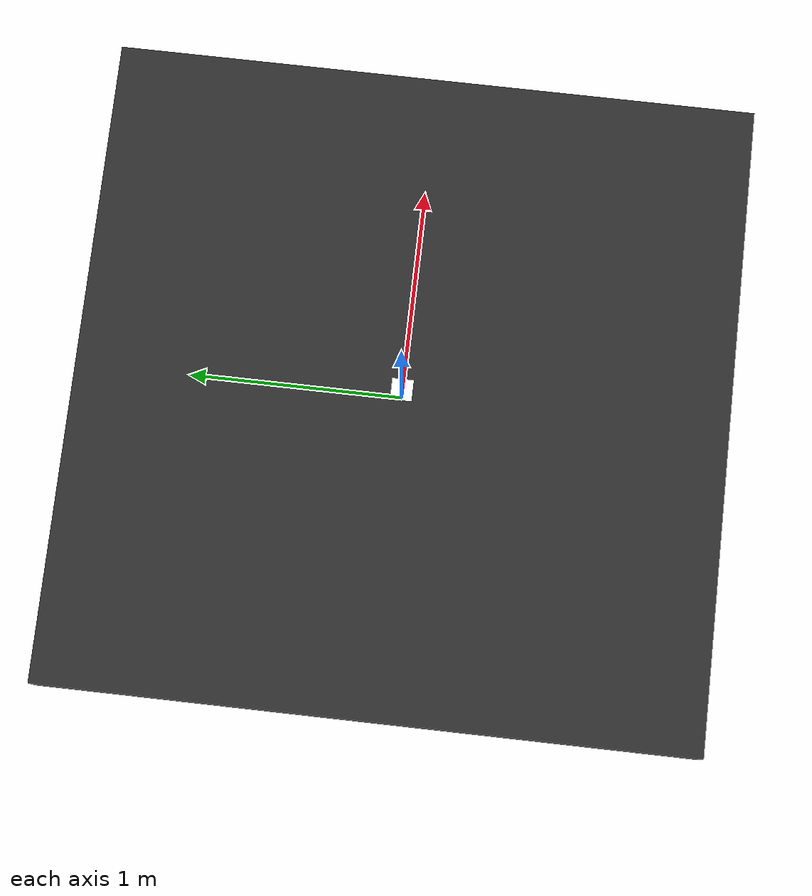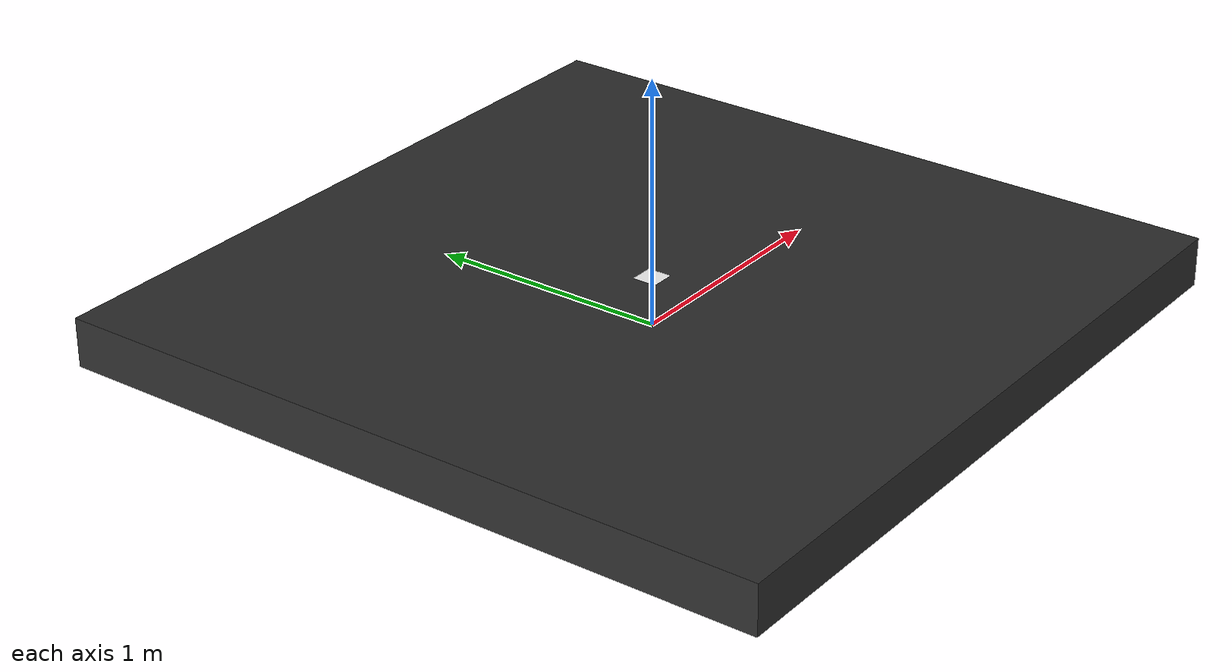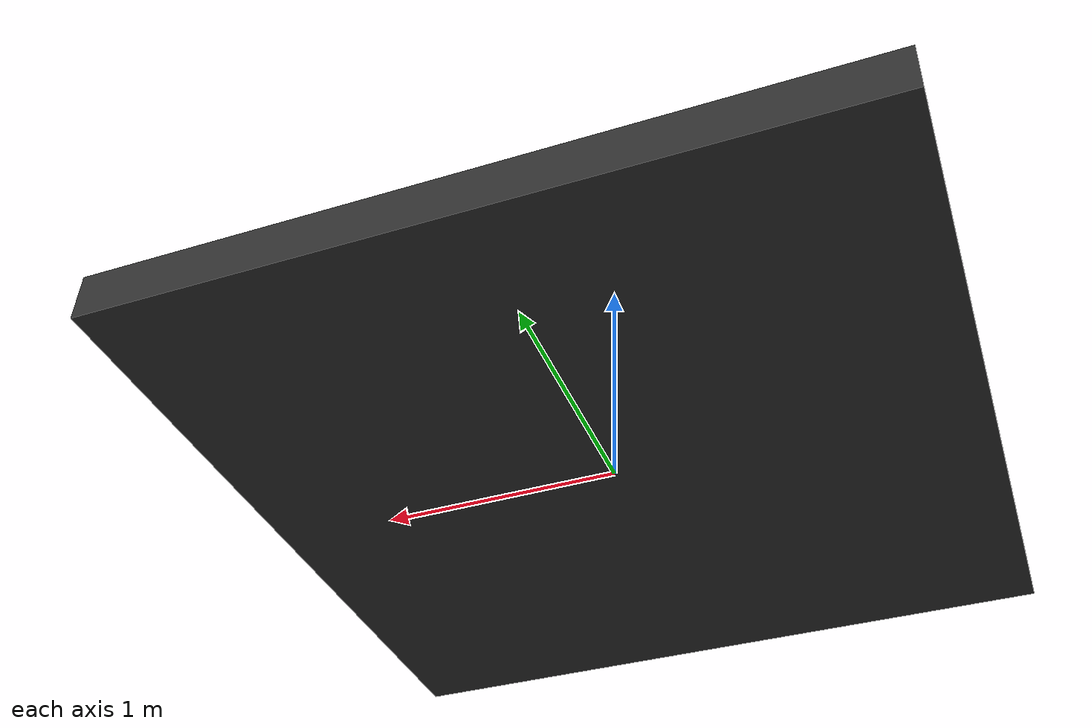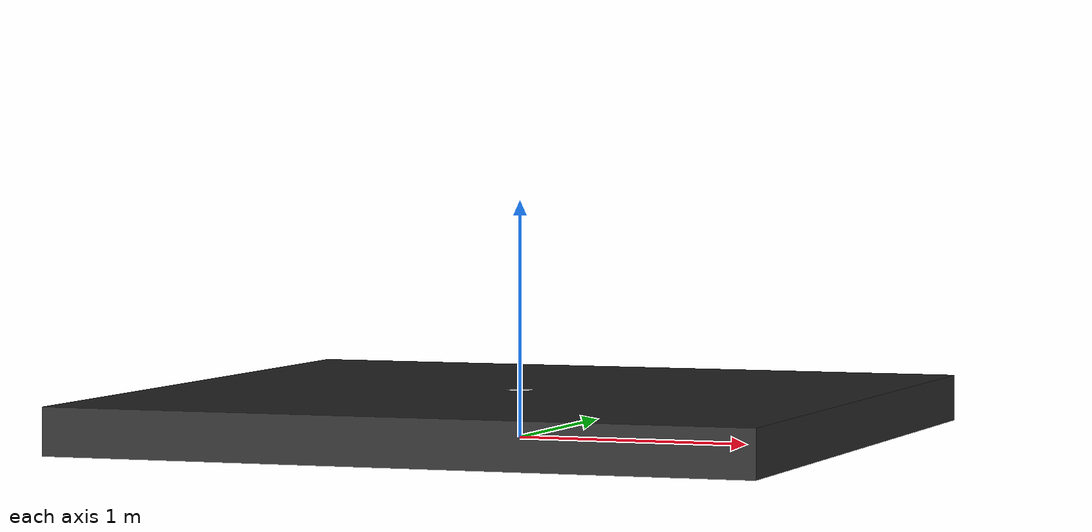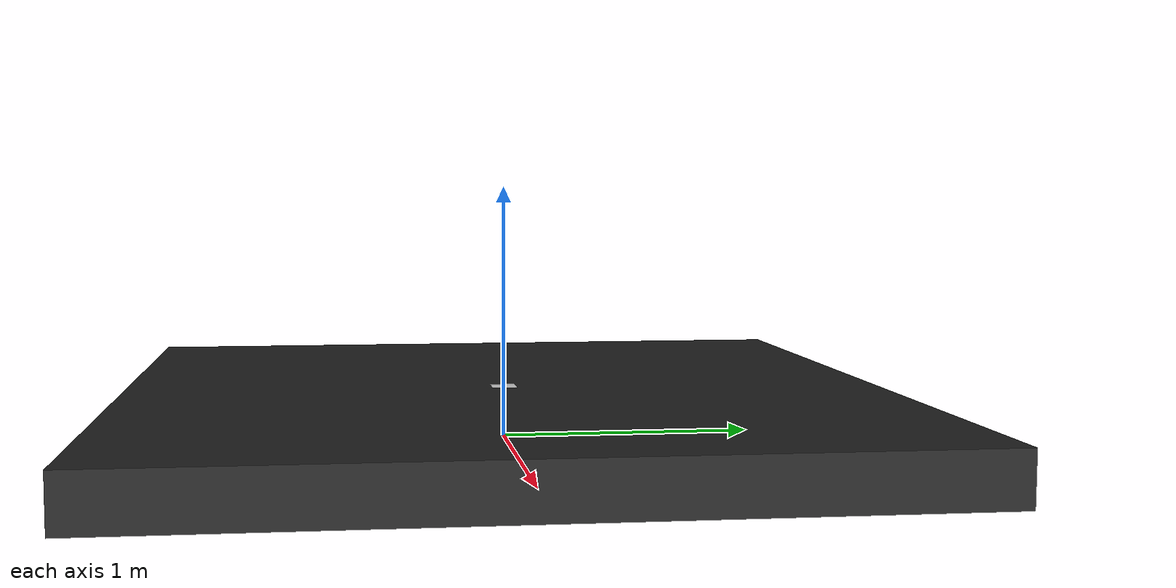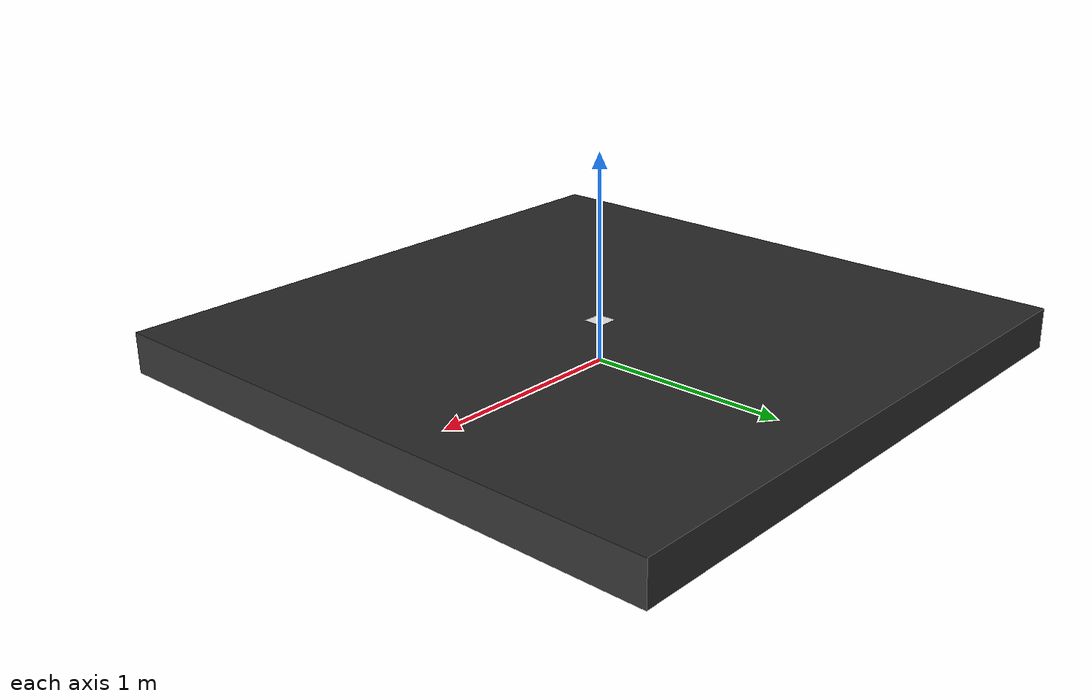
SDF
<?xml version="1.0"?>
<sdf version="1.9">
  <model name="moving_pad">
    <static>false</static>
    <link name="deck">
      <inertial>
        <pose>0 0 0.1 0 0 0</pose>
        <mass>50</mass>
        <inertia>
          <ixx>37.5</ixx>
          <iyy>37.5</iyy>
          <izz>75</izz>
        </inertia>
      </inertial>
      <collision name="deck_collision">
        <pose>0 0 0.1 0 0 0</pose>
        <geometry><box><size>3 3 0.2</size></box></geometry>
        <surface>
          <friction><ode><mu>2</mu><mu2>2</mu2></ode></friction>
        </surface>
      </collision>
      <visual name="deck_visual">
        <pose>0 0 0.1 0 0 0</pose>
        <geometry><box><size>3 3 0.2</size></box></geometry>
        <material>
          <ambient>0.12 0.12 0.12 1</ambient>
          <diffuse>0.18 0.18 0.18 1</diffuse>
        </material>
      </visual>
      <visual name="marker_7">
        <pose>0 0 0.2005 0 0 0</pose>
        <geometry>
          <plane><normal>0 0 1</normal><size>0.1 0.1</size></plane>
        </geometry>
        <material>
          <ambient>1 1 1 1</ambient>
          <diffuse>1 1 1 1</diffuse>
          <specular>0 0 0 1</specular>
          <pbr><metal>
            <albedo_map>materials/textures/marker_7.png</albedo_map>
            <roughness>1</roughness>
            <metalness>0</metalness>
          </metal></pbr>
        </material>
      </visual>
      <sensor name="pad_contact" type="contact">
        <always_on>true</always_on>
        <update_rate>20</update_rate>
        <contact>
          <collision>deck_collision</collision>
          <topic>/gazebo/private/moving_pad/contact</topic>
        </contact>
      </sensor>
    </link>
    <joint name="rail_joint" type="prismatic">
      <parent>world</parent>
      <child>deck</child>
      <axis>
        <xyz>1 0 0</xyz>
        <limit><lower>-1000</lower><upper>1000</upper><effort>1000000</effort></limit>
      </axis>
    </joint>
  </model>
</sdf>
